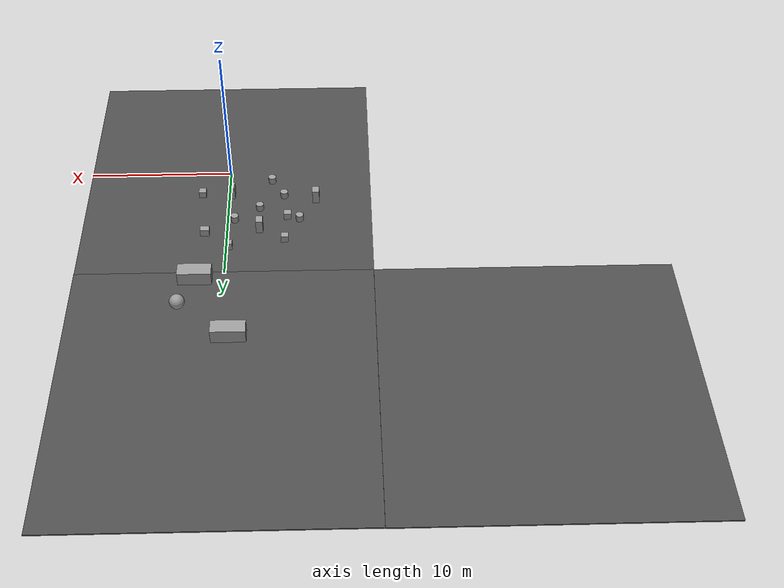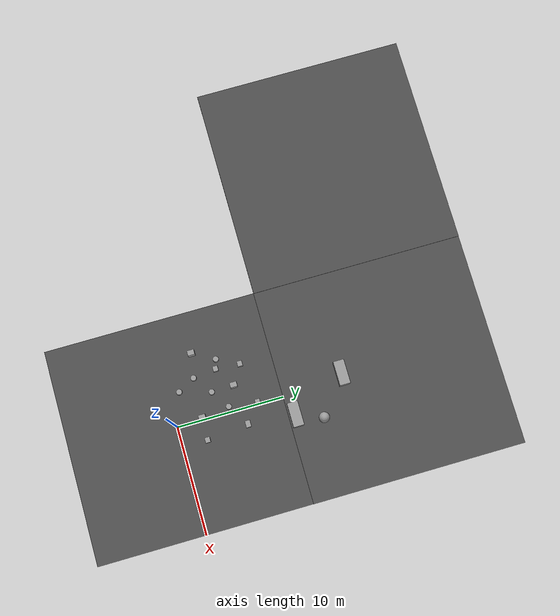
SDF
<sdf version="1.7">
 <world name="default">
  <model name="ground_plane">
   <static>1</static>
   <link name="link">
    <collision name="collision">
     <geometry><plane><normal>0 0 1</normal><size>100 100</size></plane></geometry>
     <surface>
      <contact><collide_bitmask>65535</collide_bitmask></contact>
      <friction><ode><mu>100</mu><mu2>50</mu2></ode></friction>
     </surface>
    </collision>
    <visual name="visual">
     <cast_shadows>0</cast_shadows>
     <geometry><plane><normal>0 0 1</normal><size>100 100</size></plane></geometry>
     <material>
      <script><uri>file://media/materials/scripts/gazebo.material</uri><name>Gazebo/Grey</name></script>
     </material>
    </visual>
   </link>
  </model>
  <model name="asphalt_plane">
   <static>1</static>
   <link name="link">
    <collision name="collision"><geometry><box><size>20 20 0.1</size></box></geometry></collision>
    <visual name="visual">
     <cast_shadows>0</cast_shadows>
     <geometry><box><size>20 20 0.1</size></box></geometry>
     <material>
      <script>
       <uri>model://asphalt_plane/materials/scripts</uri>
       <uri>model://asphalt_plane/materials/textures</uri>
       <name>vrc/asphalt</name>
      </script>
     </material>
    </visual>
   </link>
   <pose>-0.009672 -0.01806 0 0 -0 0</pose>
  </model>
  <model name="asphalt_plane_clone_4">
   <static>1</static>
   <link name="link">
    <collision name="collision"><geometry><box><size>20 20 0.1</size></box></geometry></collision>
    <visual name="visual">
     <cast_shadows>0</cast_shadows>
     <geometry><box><size>20 20 0.1</size></box></geometry>
     <material>
      <script>
       <uri>model://asphalt_plane/materials/scripts</uri>
       <uri>model://asphalt_plane/materials/textures</uri>
       <name>vrc/asphalt</name>
      </script>
     </material>
    </visual>
   </link>
   <pose>-20 20 0 0 -0 0</pose>
  </model>
  <model name="asphalt_plane_clone_5">
   <static>1</static>
   <link name="link">
    <collision name="collision"><geometry><box><size>20 20 0.1</size></box></geometry></collision>
    <visual name="visual">
     <cast_shadows>0</cast_shadows>
     <geometry><box><size>20 20 0.1</size></box></geometry>
     <material>
      <script>
       <uri>model://asphalt_plane/materials/scripts</uri>
       <uri>model://asphalt_plane/materials/textures</uri>
       <name>vrc/asphalt</name>
      </script>
     </material>
    </visual>
   </link>
   <pose>0.007354 19.9731 0 0 -0 0</pose>
  </model>
  <model name="unit_box_0_clone_0">
   <pose>1.49943 6.26197 0.301357 -3e-06 -0 1e-06</pose>
   <link name="link">
    <inertial>
     <mass>1</mass>
     <inertia>
      <ixx>0.166667</ixx>
      <ixy>0</ixy>
      <ixz>0</ixz>
      <iyy>0.166667</iyy>
      <iyz>0</iyz>
      <izz>0.166667</izz>
     </inertia>
    </inertial>
    <collision name="collision">
     <geometry><box><size>0.622689 0.467832 0.502712</size></box></geometry>
    </collision>
    <visual name="visual">
     <geometry><box><size>0.622689 0.467832 0.502712</size></box></geometry>
     <material>
      <script><name>Gazebo/Grey</name><uri>file://media/materials/scripts/gazebo.material</uri></script>
     </material>
    </visual>
   </link>
  </model>
  <model name="unit_box_0_clone_1">
   <pose>1.88701 2.35733 0.301356 0 -0 1e-06</pose>
   <link name="link">
    <inertial>
     <mass>1</mass>
     <inertia>
      <ixx>0.166667</ixx>
      <ixy>0</ixy>
      <ixz>0</ixz>
      <iyy>0.166667</iyy>
      <iyz>0</iyz>
      <izz>0.166667</izz>
     </inertia>
    </inertial>
    <collision name="collision">
     <geometry><box><size>0.495294 0.467832 0.502712</size></box></geometry>
    </collision>
    <visual name="visual">
     <geometry><box><size>0.495294 0.467832 0.502712</size></box></geometry>
     <material>
      <script><name>Gazebo/Grey</name><uri>file://media/materials/scripts/gazebo.material</uri></script>
     </material>
    </visual>
   </link>
  </model>
  <model name="unit_cylinder">
   <pose>-3.88534 2.58839 0.294836 -3e-06 4e-06 0.001075</pose>
   <link name="link">
    <inertial>
     <mass>1</mass>
     <inertia><ixx>0.145833</ixx><ixy>0</ixy><ixz>0</ixz><iyy>0.145833</iyy><iyz>0</iyz><izz>0.125</izz></inertia>
    </inertial>
    <collision name="collision">
     <geometry><cylinder><radius>0.264047</radius><length>0.48967</length></cylinder></geometry>
    </collision>
    <visual name="visual">
     <geometry><cylinder><radius>0.264047</radius><length>0.48967</length></cylinder></geometry>
     <material>
      <script><name>Gazebo/Grey</name><uri>file://media/materials/scripts/gazebo.material</uri></script>
     </material>
    </visual>
   </link>
  </model>
  <model name="unit_cylinder_clone_0">
   <pose>-3 1 0.294825 0 -0 0.000849</pose>
   <link name="link">
    <inertial>
     <mass>1</mass>
     <inertia><ixx>0.145833</ixx><ixy>0</ixy><ixz>0</ixz><iyy>0.145833</iyy><iyz>0</iyz><izz>0.125</izz></inertia>
    </inertial>
    <collision name="collision">
     <geometry><cylinder><radius>0.264047</radius><length>0.48967</length></cylinder></geometry>
    </collision>
    <visual name="visual">
     <geometry><cylinder><radius>0.264047</radius><length>0.48967</length></cylinder></geometry>
     <material>
      <script><name>Gazebo/Grey</name><uri>file://media/materials/scripts/gazebo.material</uri></script>
     </material>
    </visual>
   </link>
  </model>
  <model name="unit_cylinder_clone_2">
   <pose>-2.20476 3.85764 0.294832 -7e-06 9e-06 0.000575</pose>
   <link name="link">
    <inertial>
     <mass>1</mass>
     <inertia><ixx>0.145833</ixx><ixy>0</ixy><ixz>0</ixz><iyy>0.145833</iyy><iyz>0</iyz><izz>0.125</izz></inertia>
    </inertial>
    <collision name="collision">
     <geometry><cylinder><radius>0.264047</radius><length>0.48967</length></cylinder></geometry>
    </collision>
    <visual name="visual">
     <geometry><cylinder><radius>0.264047</radius><length>0.48967</length></cylinder></geometry>
     <material>
      <script><name>Gazebo/Grey</name><uri>file://media/materials/scripts/gazebo.material</uri></script>
     </material>
    </visual>
   </link>
  </model>
  <model name="unit_cylinder_clone_3">
   <pose>-0.494232 5.00001 0.294836 2e-06 -3e-06 0.000605</pose>
   <link name="link">
    <inertial>
     <mass>1</mass>
     <inertia><ixx>0.145833</ixx><ixy>0</ixy><ixz>0</ixz><iyy>0.145833</iyy><iyz>0</iyz><izz>0.125</izz></inertia>
    </inertial>
    <collision name="collision">
     <geometry><cylinder><radius>0.264047</radius><length>0.48967</length></cylinder></geometry>
    </collision>
    <visual name="visual">
     <geometry><cylinder><radius>0.264047</radius><length>0.48967</length></cylinder></geometry>
     <material>
      <script><name>Gazebo/Grey</name><uri>file://media/materials/scripts/gazebo.material</uri></script>
     </material>
    </visual>
   </link>
  </model>
  <model name="unit_cylinder_clone_14">
   <pose>-4.99997 5.00001 0.294835 0 -0 0.000792</pose>
   <link name="link">
    <inertial>
     <mass>1</mass>
     <inertia><ixx>0.145833</ixx><ixy>0</ixy><ixz>0</ixz><iyy>0.145833</iyy><iyz>0</iyz><izz>0.125</izz></inertia>
    </inertial>
    <collision name="collision">
     <geometry><cylinder><radius>0.264047</radius><length>0.48967</length></cylinder></geometry>
    </collision>
    <visual name="visual">
     <geometry><cylinder><radius>0.264047</radius><length>0.48967</length></cylinder></geometry>
     <material>
      <script><name>Gazebo/Grey</name><uri>file://media/materials/scripts/gazebo.material</uri></script>
     </material>
    </visual>
   </link>
  </model>
  <model name="unit_box_0_clone_1_clone">
   <pose>-4.15621 4.74188 0.301356 0 -0 1e-06</pose>
   <link name="link">
    <inertial>
     <mass>1</mass>
     <inertia>
      <ixx>0.166667</ixx>
      <ixy>0</ixy>
      <ixz>0</ixz>
      <iyy>0.166667</iyy>
      <iyz>0</iyz>
      <izz>0.166667</izz>
     </inertia>
    </inertial>
    <collision name="collision">
     <geometry><box><size>0.495294 0.467832 0.502712</size></box></geometry>
    </collision>
    <visual name="visual">
     <geometry><box><size>0.495294 0.467832 0.502712</size></box></geometry>
     <material>
      <script><name>Gazebo/Grey</name><uri>file://media/materials/scripts/gazebo.material</uri></script>
     </material>
    </visual>
   </link>
  </model>
  <model name="unit_box_0_clone_1_clone_0">
   <pose>-4 7 0.301356 0 -0 1e-06</pose>
   <link name="link">
    <inertial>
     <mass>1</mass>
     <inertia>
      <ixx>0.166667</ixx>
      <ixy>0</ixy>
      <ixz>0</ixz>
      <iyy>0.166667</iyy>
      <iyz>0</iyz>
      <izz>0.166667</izz>
     </inertia>
    </inertial>
    <collision name="collision">
     <geometry><box><size>0.495294 0.467832 0.502712</size></box></geometry>
    </collision>
    <visual name="visual">
     <geometry><box><size>0.495294 0.467832 0.502712</size></box></geometry>
     <material>
      <script><name>Gazebo/Grey</name><uri>file://media/materials/scripts/gazebo.material</uri></script>
     </material>
    </visual>
   </link>
  </model>
  <model name="unit_box_0_clone_1_clone_1">
   <pose>-0.198532 7.63401 0.301356 0 -0 1e-06</pose>
   <link name="link">
    <inertial>
     <mass>1</mass>
     <inertia>
      <ixx>0.166667</ixx>
      <ixy>0</ixy>
      <ixz>0</ixz>
      <iyy>0.166667</iyy>
      <iyz>0</iyz>
      <izz>0.166667</izz>
     </inertia>
    </inertial>
    <collision name="collision">
     <geometry><box><size>0.495294 0.467832 0.502712</size></box></geometry>
    </collision>
    <visual name="visual">
     <geometry><box><size>0.495294 0.467832 0.502712</size></box></geometry>
     <material>
      <script><name>Gazebo/Grey</name><uri>file://media/materials/scripts/gazebo.material</uri></script>
     </material>
    </visual>
   </link>
  </model>
  <model name="unit_box_3">
   <pose>-0.185436 2.4314 0.55 0 -0 0</pose>
   <link name="link">
    <inertial>
     <mass>1</mass>
     <inertia>
      <ixx>0.166667</ixx>
      <ixy>0</ixy>
      <ixz>0</ixz>
      <iyy>0.166667</iyy>
      <iyz>0</iyz>
      <izz>0.166667</izz>
     </inertia>
    </inertial>
    <collision name="collision"><geometry><box><size>0.473217 0.637104 1</size></box></geometry></collision>
    <visual name="visual">
     <geometry><box><size>0.473217 0.637104 1</size></box></geometry>
     <material>
      <script><name>Gazebo/Grey</name><uri>file://media/materials/scripts/gazebo.material</uri></script>
     </material>
    </visual>
   </link>
  </model>
  <model name="unit_box_3_clone">
   <pose>-2.24652 5.9397 0.55 0 -0 0</pose>
   <link name="link">
    <inertial>
     <mass>1</mass>
     <inertia>
      <ixx>0.166667</ixx>
      <ixy>0</ixy>
      <ixz>0</ixz>
      <iyy>0.166667</iyy>
      <iyz>0</iyz>
      <izz>0.166667</izz>
     </inertia>
    </inertial>
    <collision name="collision"><geometry><box><size>0.473217 0.637104 1</size></box></geometry></collision>
    <visual name="visual">
     <geometry><box><size>0.473217 0.637104 1</size></box></geometry>
     <material>
      <script><name>Gazebo/Grey</name><uri>file://media/materials/scripts/gazebo.material</uri></script>
     </material>
    </visual>
   </link>
  </model>
  <model name="unit_box_3_clone_2">
   <pose>-6.12917 2.98269 0.55 0 -0 0</pose>
   <link name="link">
    <inertial>
     <mass>1</mass>
     <inertia>
      <ixx>0.166667</ixx>
      <ixy>0</ixy>
      <ixz>0</ixz>
      <iyy>0.166667</iyy>
      <iyz>0</iyz>
      <izz>0.166667</izz>
     </inertia>
    </inertial>
    <collision name="collision"><geometry><box><size>0.473217 0.637104 1</size></box></geometry></collision>
    <visual name="visual">
     <geometry><box><size>0.473217 0.637104 1</size></box></geometry>
     <material>
      <script><name>Gazebo/Grey</name><uri>file://media/materials/scripts/gazebo.material</uri></script>
     </material>
    </visual>
   </link>
  </model>
  <model name="unit_box_5">
   <pose>1.86571 10.6312 0.549967 0 2.9e-05 0</pose>
   <link name="link">
    <inertial>
     <mass>1</mass>
     <inertia>
      <ixx>0.166667</ixx>
      <ixy>0</ixy>
      <ixz>0</ixz>
      <iyy>0.166667</iyy>
      <iyz>0</iyz>
      <izz>0.166667</izz>
     </inertia>
    </inertial>
    <collision name="collision"><geometry><box><size>2.25366 1 1</size></box></geometry></collision>
    <visual name="visual">
     <geometry><box><size>2.25366 1 1</size></box></geometry>
     <material>
      <script><name>Gazebo/Grey</name><uri>file://media/materials/scripts/gazebo.material</uri></script>
     </material>
    </visual>
   </link>
  </model>
  <model name="unit_box_5_clone">
   <pose>-0.60707 15.7172 0.549967 0 -2.9e-05 0</pose>
   <link name="link">
    <inertial>
     <mass>1</mass>
     <inertia>
      <ixx>0.166667</ixx>
      <ixy>0</ixy>
      <ixz>0</ixz>
      <iyy>0.166667</iyy>
      <iyz>0</iyz>
      <izz>0.166667</izz>
     </inertia>
    </inertial>
    <collision name="collision"><geometry><box><size>2.25366 1 1</size></box></geometry></collision>
    <visual name="visual">
     <geometry><box><size>2.25366 1 1</size></box></geometry>
     <material>
      <script><name>Gazebo/Grey</name><uri>file://media/materials/scripts/gazebo.material</uri></script>
     </material>
    </visual>
   </link>
  </model>
  <model name="unit_sphere_clone_0">
   <link name="link">
    <inertial>
     <mass>1.41372</mass>
     <inertia>
      <ixx>0.141372</ixx>
      <ixy>0</ixy>
      <ixz>0</ixz>
      <iyy>0.141372</iyy>
      <iyz>0</iyz>
      <izz>0.141372</izz>
     </inertia>
    </inertial>
    <visual name="visual">
     <geometry><sphere><radius>0.5</radius></sphere></geometry>
     <material>
      <script><name>Gazebo/Grey</name><uri>file://media/materials/scripts/gazebo.material</uri></script>
      <shader type="pixel"><normal_map>__default__</normal_map></shader>
     </material>
    </visual>
    <collision name="collision">
     <geometry><sphere><radius>0.5</radius></sphere></geometry>
     <surface>
      <friction>
       <ode><mu>1</mu><mu2>1</mu2><fdir1>0 0 0</fdir1><slip1>0</slip1><slip2>0</slip2></ode>
       <torsional>
        <coefficient>1</coefficient>
        <patch_radius>0</patch_radius>
        <surface_radius>0</surface_radius>
        <use_patch_radius>1</use_patch_radius>
        <ode><slip>0</slip></ode>
       </torsional>
      </friction>
      <bounce><restitution_coefficient>0</restitution_coefficient><threshold>1e+06</threshold></bounce>
      <contact>
       <collide_without_contact>0</collide_without_contact>
       <collide_without_contact_bitmask>1</collide_without_contact_bitmask>
       <collide_bitmask>1</collide_bitmask>
       <ode>
        <soft_cfm>0</soft_cfm>
        <soft_erp>0.2</soft_erp>
        <kp>1e+13</kp>
        <kd>1</kd>
        <max_vel>0.01</max_vel>
        <min_depth>0</min_depth>
       </ode>
       <bullet>
        <split_impulse>1</split_impulse>
        <split_impulse_penetration_threshold>-0.01</split_impulse_penetration_threshold>
        <soft_cfm>0</soft_cfm>
        <soft_erp>0.2</soft_erp>
        <kp>1e+13</kp>
        <kd>1</kd>
       </bullet>
      </contact>
     </surface>
    </collision>
   </link>
   <static>0</static>
   <pose>2.83927 13.0704 0.55 0 -0 0</pose>
  </model>
 </world>
</sdf>
